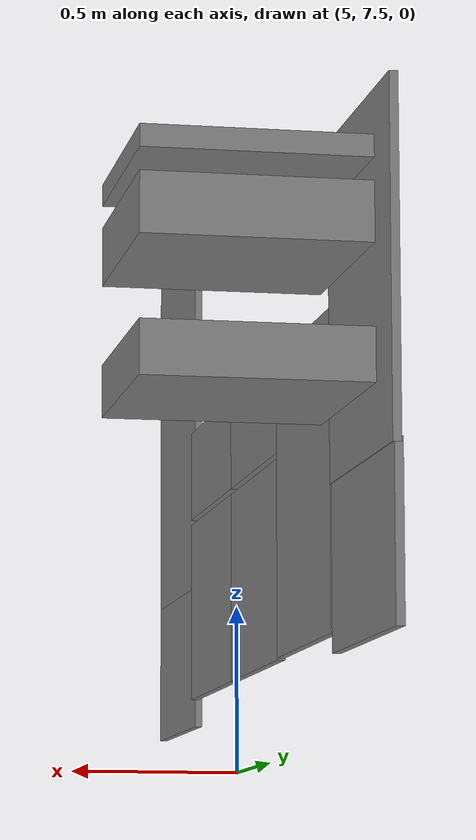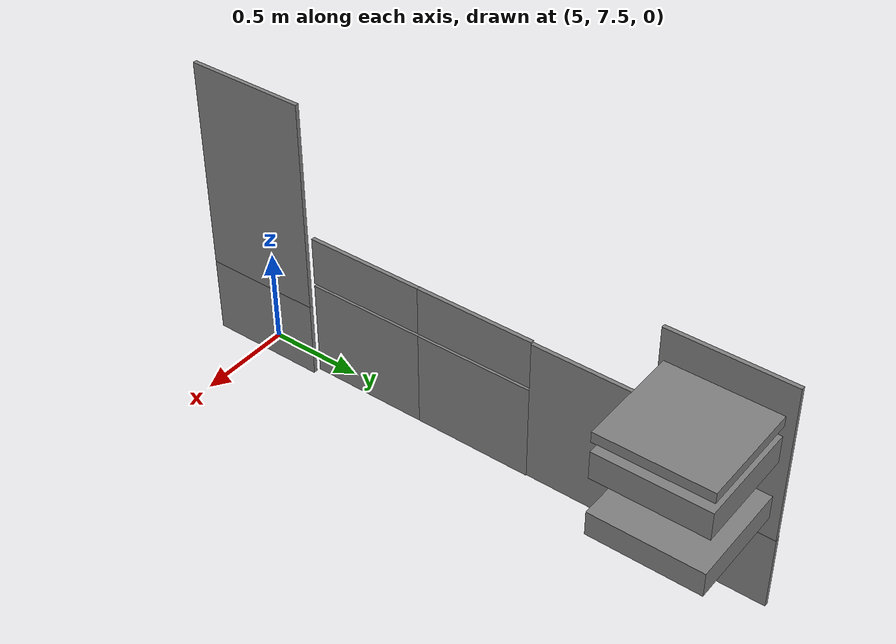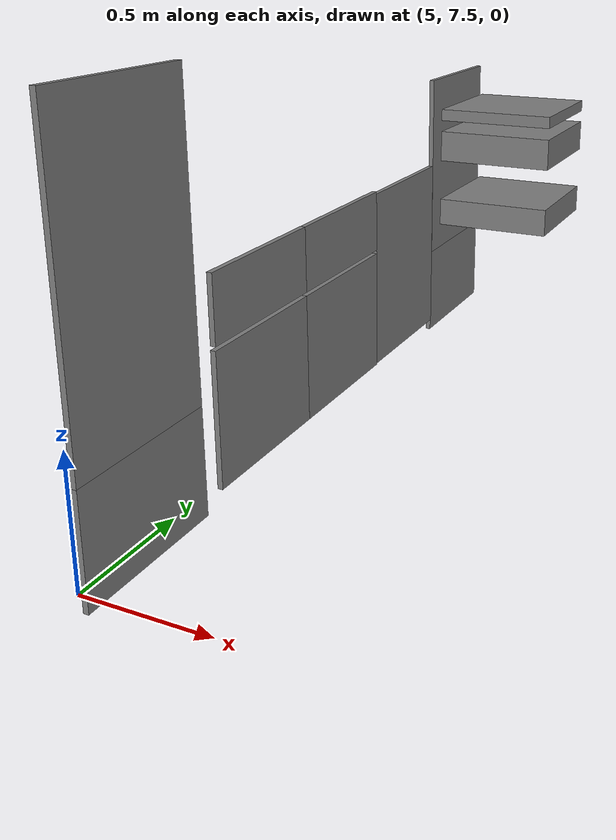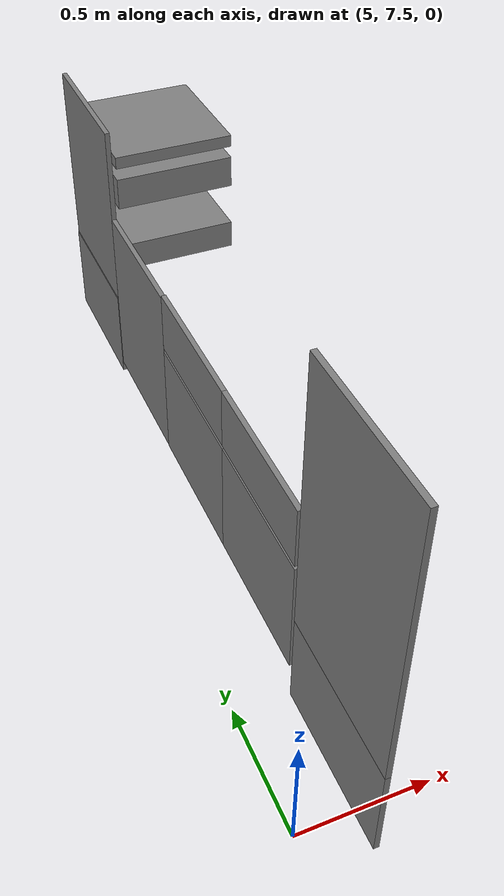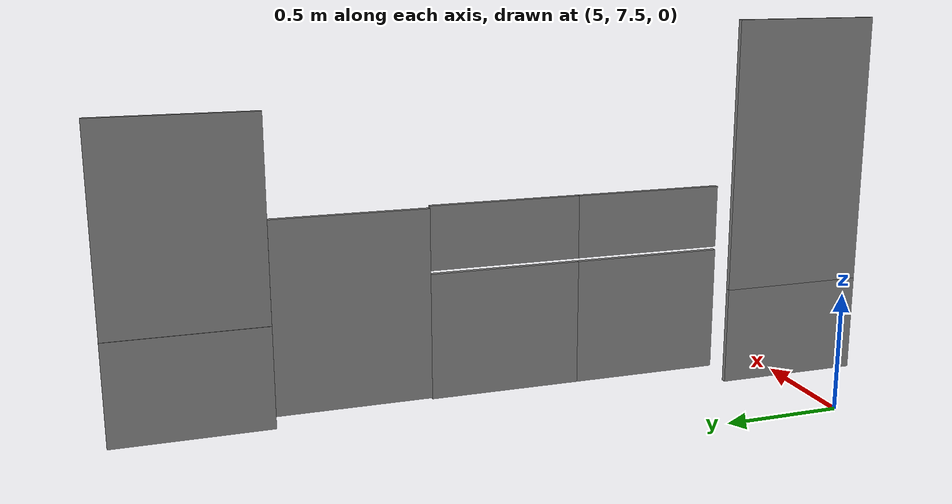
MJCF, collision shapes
<mujoco model="R007">
  <compiler angle="radian"/>

  <asset>
    <mesh name="mobile-fridge__Fridge_handle" content_type="model/obj" file="mobile-fridge__Fridge_handle.obj"/>
    <mesh name="mobile-fridge__Fridge_door" content_type="model/obj" file="mobile-fridge__Fridge_door.obj"/>
    <mesh name="mobile-fridge__Cover_back" content_type="model/obj" file="mobile-fridge__Cover_back.obj"/>
    <mesh name="mobile-fridge__Cover_right" content_type="model/obj" file="mobile-fridge__Cover_right.obj"/>
    <mesh name="mobile-fridge__Cover_left" content_type="model/obj" file="mobile-fridge__Cover_left.obj"/>
    <mesh name="mobile-fridge__Cover_front" content_type="model/obj" file="mobile-fridge__Cover_front.obj"/>
    <mesh name="mobile-fridge__Cabinet_back" content_type="model/obj" file="mobile-fridge__Cabinet_back.obj"/>
    <mesh name="mobile-fridge__Cabinet_right" content_type="model/obj" file="mobile-fridge__Cabinet_right.obj"/>
    <mesh name="mobile-fridge__Cabinet_left" content_type="model/obj" file="mobile-fridge__Cabinet_left.obj"/>
    <mesh name="mobile-fridge__Cabinet_top" content_type="model/obj" file="mobile-fridge__Cabinet_top.obj"/>
    <mesh name="mobile-fridge__Cabinet_bottom" content_type="model/obj" file="mobile-fridge__Cabinet_bottom.obj"/>
    <mesh name="mobile-fridge__Cabinet_inner" content_type="model/obj" file="mobile-fridge__Cabinet_inner.obj"/>
    <mesh name="mobile-fridge__SwingDoor_door" content_type="model/obj" file="mobile-fridge__SwingDoor_door.obj"/>
    <mesh name="mobile-fridge__SwingDoor_handle" content_type="model/obj" file="mobile-fridge__SwingDoor_handle.obj"/>
    <mesh name="mobile-dishwasher__Cover_back" content_type="model/obj" file="mobile-dishwasher__Cover_back.obj"/>
    <mesh name="mobile-dishwasher__Cover_left" content_type="model/obj" file="mobile-dishwasher__Cover_left.obj"/>
    <mesh name="mobile-dishwasher__Cover_right" content_type="model/obj" file="mobile-dishwasher__Cover_right.obj"/>
    <mesh name="mobile-dishwasher__Cover_front" content_type="model/obj" file="mobile-dishwasher__Cover_front.obj"/>
    <mesh name="mobile-dishwasher__Cabinet_back" content_type="model/obj" file="mobile-dishwasher__Cabinet_back.obj"/>
    <mesh name="mobile-dishwasher__Cabinet_bottom" content_type="model/obj" file="mobile-dishwasher__Cabinet_bottom.obj"/>
    <mesh name="mobile-dishwasher__Cabinet_left" content_type="model/obj" file="mobile-dishwasher__Cabinet_left.obj"/>
    <mesh name="mobile-dishwasher__Cabinet_right" content_type="model/obj" file="mobile-dishwasher__Cabinet_right.obj"/>
    <mesh name="mobile-dishwasher__Cabinet_top" content_type="model/obj" file="mobile-dishwasher__Cabinet_top.obj"/>
    <mesh name="mobile-dishwasher__Cabinet_interior" content_type="model/obj" file="mobile-dishwasher__Cabinet_interior.obj"/>
    <mesh name="mobile-dishwasher__Dishwasher_door" content_type="model/obj" file="mobile-dishwasher__Dishwasher_door.obj"/>
    <mesh name="mobile-dishwasher__Dishwasher_handle" content_type="model/obj" file="mobile-dishwasher__Dishwasher_handle.obj"/>
    <mesh name="mobile-dishwasher__Dishwasher_cutlery_basket_Basket" content_type="model/obj" file="mobile-dishwasher__Dishwasher_cutlery_basket_Basket.obj"/>
    <mesh name="mobile-dishwasher__Dishwasher_cutlery_basket_handle" content_type="model/obj" file="mobile-dishwasher__Dishwasher_cutlery_basket_handle.obj"/>
    <mesh name="mobile-dishwasher__Dishwasher_upper_basket_Basket" content_type="model/obj" file="mobile-dishwasher__Dishwasher_upper_basket_Basket.obj"/>
    <mesh name="mobile-dishwasher__Dishwasher_upper_basket_handle" content_type="model/obj" file="mobile-dishwasher__Dishwasher_upper_basket_handle.obj"/>
    <mesh name="mobile-dishwasher__Dishwasher_upper_basket_divider" content_type="model/obj" file="mobile-dishwasher__Dishwasher_upper_basket_divider.obj"/>
    <mesh name="mobile-dishwasher__Dishwasher_lower_basket_Basket" content_type="model/obj" file="mobile-dishwasher__Dishwasher_lower_basket_Basket.obj"/>
    <mesh name="mobile-dishwasher__Dishwasher_lower_basket_handle" content_type="model/obj" file="mobile-dishwasher__Dishwasher_lower_basket_handle.obj"/>
    <mesh name="mobile-dishwasher__Dishwasher_lower_basket_structure" content_type="model/obj" file="mobile-dishwasher__Dishwasher_lower_basket_structure.obj"/>
    <mesh name="mobile-dishwasher__Drawer_interior" content_type="model/obj" file="mobile-dishwasher__Drawer_interior.obj"/>
    <mesh name="mobile-dishwasher__Drawer_door" content_type="model/obj" file="mobile-dishwasher__Drawer_door.obj"/>
    <mesh name="mobile-dishwasher__Drawer_handle" content_type="model/obj" file="mobile-dishwasher__Drawer_handle.obj"/>
    <mesh name="mobile-kitchen-counter__Cabinet_back" content_type="model/obj" file="mobile-kitchen-counter__Cabinet_back.obj"/>
    <mesh name="mobile-kitchen-counter__Cabinet_cover" content_type="model/obj" file="mobile-kitchen-counter__Cabinet_cover.obj"/>
    <mesh name="mobile-kitchen-counter__Cabinet_inner_left_r" content_type="model/obj" file="mobile-kitchen-counter__Cabinet_inner_left_r.obj"/>
    <mesh name="mobile-kitchen-counter__Cabinet_inner_right_l" content_type="model/obj" file="mobile-kitchen-counter__Cabinet_inner_right_l.obj"/>
    <mesh name="mobile-kitchen-counter__Cabinet_inner_right_r" content_type="model/obj" file="mobile-kitchen-counter__Cabinet_inner_right_r.obj"/>
    <mesh name="mobile-kitchen-counter__Cabinet_right" content_type="model/obj" file="mobile-kitchen-counter__Cabinet_right.obj"/>
    <mesh name="mobile-kitchen-counter__Cabinet_left" content_type="model/obj" file="mobile-kitchen-counter__Cabinet_left.obj"/>
    <mesh name="mobile-kitchen-counter__Cabinet_inner_left_l" content_type="model/obj" file="mobile-kitchen-counter__Cabinet_inner_left_l.obj"/>
    <mesh name="mobile-kitchen-counter__Cabinet_bottom" content_type="model/obj" file="mobile-kitchen-counter__Cabinet_bottom.obj"/>
    <mesh name="mobile-kitchen-counter__Cover_back" content_type="model/obj" file="mobile-kitchen-counter__Cover_back.obj"/>
    <mesh name="mobile-kitchen-counter__Cover_right" content_type="model/obj" file="mobile-kitchen-counter__Cover_right.obj"/>
    <mesh name="mobile-kitchen-counter__Cover_left" content_type="model/obj" file="mobile-kitchen-counter__Cover_left.obj"/>
    <mesh name="mobile-kitchen-counter__Cover_front" content_type="model/obj" file="mobile-kitchen-counter__Cover_front.obj"/>
    <mesh name="mobile-kitchen-counter__Counter_top" content_type="model/obj" file="mobile-kitchen-counter__Counter_top.obj"/>
    <mesh name="mobile-kitchen-counter__Sink_water_outlet" content_type="model/obj" file="mobile-kitchen-counter__Sink_water_outlet.obj"/>
    <mesh name="mobile-kitchen-counter__Sink_water_tab" content_type="model/obj" file="mobile-kitchen-counter__Sink_water_tab.obj"/>
    <mesh name="mobile-kitchen-counter__Sink_sink" content_type="model/obj" file="mobile-kitchen-counter__Sink_sink.obj"/>
    <mesh name="mobile-kitchen-counter__SwingDoorRight_door" content_type="model/obj" file="mobile-kitchen-counter__SwingDoorRight_door.obj"/>
    <mesh name="mobile-kitchen-counter__SwingDoorRight_handle" content_type="model/obj" file="mobile-kitchen-counter__SwingDoorRight_handle.obj"/>
    <mesh name="mobile-kitchen-counter__SwingDoorMiddle_door" content_type="model/obj" file="mobile-kitchen-counter__SwingDoorMiddle_door.obj"/>
    <mesh name="mobile-kitchen-counter__SwingDoorMiddle_handle" content_type="model/obj" file="mobile-kitchen-counter__SwingDoorMiddle_handle.obj"/>
    <mesh name="mobile-kitchen-counter__DrawerRight_door" content_type="model/obj" file="mobile-kitchen-counter__DrawerRight_door.obj"/>
    <mesh name="mobile-kitchen-counter__DrawerRight_handle" content_type="model/obj" file="mobile-kitchen-counter__DrawerRight_handle.obj"/>
    <mesh name="mobile-kitchen-counter__DrawerRight_interior" content_type="model/obj" file="mobile-kitchen-counter__DrawerRight_interior.obj"/>
    <mesh name="mobile-kitchen-counter__DrawerMiddle_door" content_type="model/obj" file="mobile-kitchen-counter__DrawerMiddle_door.obj"/>
    <mesh name="mobile-kitchen-counter__DrawerMiddle_handle" content_type="model/obj" file="mobile-kitchen-counter__DrawerMiddle_handle.obj"/>
    <mesh name="mobile-kitchen-counter__DrawerMiddle_interior" content_type="model/obj" file="mobile-kitchen-counter__DrawerMiddle_interior.obj"/>
    <mesh name="mobile-kitchen-counter__SwingDoorLeft_door" content_type="model/obj" file="mobile-kitchen-counter__SwingDoorLeft_door.obj"/>
    <mesh name="mobile-kitchen-counter__SwingDoorLeft_handle" content_type="model/obj" file="mobile-kitchen-counter__SwingDoorLeft_handle.obj"/>
    <mesh name="controltable__controltable" content_type="model/obj" file="controltable__controltable.obj"/>
    <mesh name="table__table" content_type="model/obj" file="table__table.obj"/>
    <mesh name="hund-square-table-80x80__hund-square-table-80x80" content_type="model/obj" file="hund-square-table-80x80__hund-square-table-80x80.obj"/>
  </asset>

  <worldbody>
    <geom pos="5.48 7.62 -0.03" quat="0 0 0 1" type="mesh" contype="0" conaffinity="0" group="1" density="0" mesh="mobile-fridge__Cover_back"/>
    <geom pos="5.48 7.62 -0.03" quat="0 0 0 1" type="mesh" contype="0" conaffinity="0" group="1" density="0" mesh="mobile-fridge__Cover_right"/>
    <geom pos="5.48 7.62 -0.03" quat="0 0 0 1" type="mesh" contype="0" conaffinity="0" group="1" density="0" mesh="mobile-fridge__Cover_left"/>
    <geom pos="5.48 7.62 -0.03" quat="0 0 0 1" type="mesh" contype="0" conaffinity="0" group="1" density="0" mesh="mobile-fridge__Cover_front"/>
    <geom pos="5.48 7.62 -0.03" quat="0 0 0 1" type="mesh" contype="0" conaffinity="0" group="1" density="0" mesh="mobile-fridge__Cabinet_back"/>
    <geom pos="5.48 7.62 -0.03" quat="0 0 0 1" type="mesh" contype="0" conaffinity="0" group="1" density="0" mesh="mobile-fridge__Cabinet_right"/>
    <geom pos="5.48 7.62 -0.03" quat="0 0 0 1" type="mesh" contype="0" conaffinity="0" group="1" density="0" mesh="mobile-fridge__Cabinet_left"/>
    <geom pos="5.48 7.62 -0.03" quat="0 0 0 1" type="mesh" contype="0" conaffinity="0" group="1" density="0" mesh="mobile-fridge__Cabinet_top"/>
    <geom pos="5.48 7.62 -0.03" quat="0 0 0 1" type="mesh" contype="0" conaffinity="0" group="1" density="0" mesh="mobile-fridge__Cabinet_bottom"/>
    <geom pos="5.48 7.62 -0.03" quat="0 0 0 1" type="mesh" contype="0" conaffinity="0" group="1" density="0" mesh="mobile-fridge__Cabinet_inner"/>
    <geom name="mobile-dishwasher__None" pos="5.5 10.08 0" quat="0 0 0 1" type="mesh" contype="0" conaffinity="0" group="1" density="0" mesh="mobile-dishwasher__Cover_back"/>
    <geom pos="5.5 10.08 0" quat="0 0 0 1" type="mesh" contype="0" conaffinity="0" group="1" density="0" mesh="mobile-dishwasher__Cover_left"/>
    <geom pos="5.5 10.08 0" quat="0 0 0 1" type="mesh" contype="0" conaffinity="0" group="1" density="0" mesh="mobile-dishwasher__Cover_right"/>
    <geom pos="5.5 10.08 0" quat="0 0 0 1" type="mesh" contype="0" conaffinity="0" group="1" density="0" mesh="mobile-dishwasher__Cover_front"/>
    <geom pos="5.5 10.08 0" quat="0 0 0 1" type="mesh" contype="0" conaffinity="0" group="1" density="0" mesh="mobile-dishwasher__Cabinet_back"/>
    <geom pos="5.5 10.08 0" quat="0 0 0 1" type="mesh" contype="0" conaffinity="0" group="1" density="0" mesh="mobile-dishwasher__Cabinet_bottom"/>
    <geom pos="5.5 10.08 0" quat="0 0 0 1" type="mesh" contype="0" conaffinity="0" group="1" density="0" mesh="mobile-dishwasher__Cabinet_left"/>
    <geom pos="5.5 10.08 0" quat="0 0 0 1" type="mesh" contype="0" conaffinity="0" group="1" density="0" mesh="mobile-dishwasher__Cabinet_right"/>
    <geom pos="5.5 10.08 0" quat="0 0 0 1" type="mesh" contype="0" conaffinity="0" group="1" density="0" mesh="mobile-dishwasher__Cabinet_top"/>
    <geom pos="5.5 10.08 0" quat="0 0 0 1" type="mesh" contype="0" conaffinity="0" group="1" density="0" mesh="mobile-dishwasher__Cabinet_interior"/>
    <geom name="mobile-kitchen-counter__None" pos="5.8 7.98 0.02" quat="0 0 0 1" type="mesh" contype="0" conaffinity="0" group="1" density="0" mesh="mobile-kitchen-counter__Cabinet_back"/>
    <geom pos="5.8 7.98 0.02" quat="0 0 0 1" type="mesh" contype="0" conaffinity="0" group="1" density="0" mesh="mobile-kitchen-counter__Cabinet_cover"/>
    <geom pos="5.8 7.98 0.02" quat="0 0 0 1" type="mesh" contype="0" conaffinity="0" group="1" density="0" mesh="mobile-kitchen-counter__Cabinet_inner_left_r"/>
    <geom pos="5.8 7.98 0.02" quat="0 0 0 1" type="mesh" contype="0" conaffinity="0" group="1" density="0" mesh="mobile-kitchen-counter__Cabinet_inner_right_l"/>
    <geom pos="5.8 7.98 0.02" quat="0 0 0 1" type="mesh" contype="0" conaffinity="0" group="1" density="0" mesh="mobile-kitchen-counter__Cabinet_inner_right_r"/>
    <geom pos="5.8 7.98 0.02" quat="0 0 0 1" type="mesh" contype="0" conaffinity="0" group="1" density="0" mesh="mobile-kitchen-counter__Cabinet_right"/>
    <geom pos="5.8 7.98 0.02" quat="0 0 0 1" type="mesh" contype="0" conaffinity="0" group="1" density="0" mesh="mobile-kitchen-counter__Cabinet_left"/>
    <geom pos="5.8 7.98 0.02" quat="0 0 0 1" type="mesh" contype="0" conaffinity="0" group="1" density="0" mesh="mobile-kitchen-counter__Cabinet_inner_left_l"/>
    <geom pos="5.8 7.98 0.02" quat="0 0 0 1" type="mesh" contype="0" conaffinity="0" group="1" density="0" mesh="mobile-kitchen-counter__Cabinet_bottom"/>
    <geom pos="5.8 7.98 0.02" quat="0 0 0 1" type="mesh" contype="0" conaffinity="0" group="1" density="0" mesh="mobile-kitchen-counter__Cover_back"/>
    <geom pos="5.8 7.98 0.02" quat="0 0 0 1" type="mesh" contype="0" conaffinity="0" group="1" density="0" mesh="mobile-kitchen-counter__Cover_right"/>
    <geom pos="5.8 7.98 0.02" quat="0 0 0 1" type="mesh" contype="0" conaffinity="0" group="1" density="0" mesh="mobile-kitchen-counter__Cover_left"/>
    <geom pos="5.8 7.98 0.02" quat="0 0 0 1" type="mesh" contype="0" conaffinity="0" group="1" density="0" mesh="mobile-kitchen-counter__Cover_front"/>
    <geom pos="5.8 7.98 0.02" quat="0 0 0 1" type="mesh" contype="0" conaffinity="0" group="1" density="0" mesh="mobile-kitchen-counter__Counter_top"/>
    <geom pos="5.8 7.98 0.02" quat="0 0 0 1" type="mesh" contype="0" conaffinity="0" group="1" density="0" mesh="mobile-kitchen-counter__Sink_water_outlet"/>
    <geom pos="5.8 7.98 0.02" quat="0 0 0 1" type="mesh" contype="0" conaffinity="0" group="1" density="0" mesh="mobile-kitchen-counter__Sink_water_tab"/>
    <geom pos="5.8 7.98 0.02" quat="0 0 0 1" type="mesh" contype="0" conaffinity="0" group="1" density="0" mesh="mobile-kitchen-counter__Sink_sink"/>
    <geom pos="1.4 8.25 0" quat="1 0 0 0" type="mesh" contype="0" conaffinity="0" group="1" density="0" mesh="controltable__controltable"/>
    <geom pos="5.25 11.9 -0.07" quat="0 0 0 1" type="mesh" contype="0" conaffinity="0" group="1" density="0" mesh="table__table"/>
    <geom pos="1.2 10.89 -0.05" quat="0.707107 0.707107 0 0" type="mesh" contype="0" conaffinity="0" group="1" density="0" mesh="hund-square-table-80x80__hund-square-table-80x80"/>
    <geom pos="1.2 12.38 -0.05" quat="0.707107 0.707107 0 0" type="mesh" contype="0" conaffinity="0" group="1" density="0" mesh="hund-square-table-80x80__hund-square-table-80x80"/>
    <body name="mobile-fridge__Fridge" pos="5.20806 7.33367 1.15972" quat="0 0 0 1">
      <inertial pos="0.025026 -0.308998 0.0107926" quat="0.749226 0.66043 0.04909 0.0090687" mass="6" diaginertia="6.35104 6.33581 6.01553"/>
      <joint name="mobile-fridge__Fridge_joint" pos="0 0 0" axis="0 0 1" range="0 1.7"/>
      <geom name="mobile-fridge__None" pos="-0.271943 -0.286331 -1.18972" quat="1 0 0 0" type="mesh" contype="0" conaffinity="0" group="1" density="0" mesh="mobile-fridge__Fridge_handle"/>
      <geom pos="-0.271943 -0.286331 -1.18972" type="mesh" contype="0" conaffinity="0" group="1" density="0" mesh="mobile-fridge__Fridge_door"/>
      <geom size="0.01 0.3 0.55" pos="0.016072 -0.286123 -0.105686" type="box"/>
    </body>
    <body name="mobile-fridge__SwingDoor" pos="5.20806 7.33367 0.279863" quat="0 0 0 1">
      <inertial pos="0.025023 -0.190748 0.0838644" quat="0.846809 0.520837 0.0999237 -0.0407224" mass="6" diaginertia="6.14612 6.13492 6.01149"/>
      <joint name="mobile-fridge__SwingDoor_joint" pos="0 0 0" axis="0 0 1" range="0 1.7"/>
      <geom pos="-0.271943 -0.286331 -0.309863" quat="1 0 0 0" type="mesh" contype="0" conaffinity="0" group="1" density="0" mesh="mobile-fridge__SwingDoor_door"/>
      <geom size="0.01 0.3 0.2" pos="0.016053 -0.286123 0.0256714" type="box"/>
      <geom pos="-0.271943 -0.286331 -0.309863" quat="1 0 0 0" type="mesh" contype="0" conaffinity="0" group="1" density="0" mesh="mobile-fridge__SwingDoor_handle"/>
    </body>
    <body name="mobile-dishwasher__Dishwasher" pos="5.23358 10.08 0.564574" quat="0 0 0 1">
      <inertial pos="0.0185936 0.00135705 0.511125" quat="0.999886 -0.00153449 0.015019 -6.6602e-06" mass="9" diaginertia="9.82624 9.78354 9.0473"/>
      <joint name="mobile-dishwasher__Dishwasher_joint" pos="0 0 0" axis="0 1 0" range="0 1.7"/>
      <geom pos="-0.266425 0 -0.564574" type="mesh" contype="0" conaffinity="0" group="1" density="0" mesh="mobile-dishwasher__Dishwasher_door"/>
      <geom size="0.01 0.3 0.4" pos="0.0190585 -3.09944e-06 0.357161" type="box"/>
      <geom pos="-0.266425 0 -0.564574" quat="1 0 0 0" type="mesh" contype="0" conaffinity="0" group="1" density="0" mesh="mobile-dishwasher__Dishwasher_handle"/>
    </body>
    <body name="mobile-dishwasher__Dishwasher_cutlery_basket" pos="5.50274 10.0813 1.16425" quat="0 0 0 1">
      <inertial pos="0.126522 -2.15368e-09 -0.00424004" quat="0.491555 0.508304 0.508304 0.491555" mass="4" diaginertia="4.0641 4.0641 4"/>
      <joint name="mobile-dishwasher__Dishwasher_cutlery_basket_joint" pos="0 0 0" axis="1 0 0" type="slide" range="0 0.5"/>
      <geom pos="0.0027399 0.00127814 -1.16425" quat="1 0 0 0" type="mesh" contype="0" conaffinity="0" group="1" density="0" mesh="mobile-dishwasher__Dishwasher_cutlery_basket_Basket"/>
      <geom size="0.025 0.2525 0.265" quat="0.5 0.5 0.5 -0.5" type="box"/>
      <geom pos="0.0027399 0.00127814 -1.16425" quat="1 0 0 0" type="mesh" contype="0" conaffinity="0" group="1" density="0" mesh="mobile-dishwasher__Dishwasher_cutlery_basket_handle"/>
    </body>
    <body name="mobile-dishwasher__Dishwasher_upper_basket" pos="5.50274 10.0813 1.02108" quat="0 0 0 1">
      <inertial pos="0.116522 -0.0108493 -0.00344066" quat="-0.143344 0.692425 -0.0726783 0.703362" mass="6" diaginertia="6.08535 6.08227 6.00308"/>
      <joint name="mobile-dishwasher__Dishwasher_upper_basket_joint" pos="0 0 0" axis="1 0 0" type="slide" range="0 0.5"/>
      <geom pos="0.00274001 0.00127813 -1.02108" quat="1 0 0 0" type="mesh" contype="0" conaffinity="0" group="1" density="0" mesh="mobile-dishwasher__Dishwasher_upper_basket_Basket"/>
      <geom size="0.0675 0.2525 0.265" quat="0.5 0.5 0.5 -0.5" type="box"/>
      <geom pos="-0.821665 -0.00127813 -0.250305" quat="0 0.707107 0 0.707107" type="mesh" contype="0" conaffinity="0" group="1" density="0" mesh="mobile-dishwasher__Dishwasher_upper_basket_handle"/>
      <geom pos="0.00274001 0.00127813 -1.02108" quat="1 0 0 0" type="mesh" contype="0" conaffinity="0" group="1" density="0" mesh="mobile-dishwasher__Dishwasher_upper_basket_divider"/>
    </body>
    <body name="mobile-dishwasher__Dishwasher_lower_basket" pos="5.50274 10.0813 0.71187" quat="0 0 0 1">
      <inertial pos="0.166119 -0.000261887 0.10997" quat="0.638772 0.325417 0.340895 0.608165" mass="6" diaginertia="6.12024 6.11943 6.00081"/>
      <joint name="mobile-dishwasher__Dishwasher_lower_basket_joint" pos="0 0 0" axis="1 0 0" type="slide" range="0 0.5"/>
      <geom pos="0.00274026 0.00127813 -0.71187" quat="1 0 0 0" type="mesh" contype="0" conaffinity="0" group="1" density="0" mesh="mobile-dishwasher__Dishwasher_lower_basket_Basket"/>
      <geom size="0.06 0.2525 0.265" quat="0.5 0.5 0.5 -0.5" type="box"/>
      <geom pos="0.00274026 0.00127813 -0.71187" quat="1 0 0 0" type="mesh" contype="0" conaffinity="0" group="1" density="0" mesh="mobile-dishwasher__Dishwasher_lower_basket_handle"/>
      <geom pos="0.00274026 0.00127813 -0.71187" quat="1 0 0 0" type="mesh" contype="0" conaffinity="0" group="1" density="0" mesh="mobile-dishwasher__Dishwasher_lower_basket_structure"/>
    </body>
    <body name="mobile-dishwasher__Drawer" pos="5.21152 10.08 0.334433" quat="0 0 0 1">
      <inertial pos="-0.0278238 8.32093e-05 0.0600862" quat="0.626817 0.328924 0.328433 0.625333" mass="6" diaginertia="6.08308 6.07019 6.01289"/>
      <joint name="mobile-dishwasher__Drawer_joint" pos="0 0 0" axis="1 0 0" type="slide" range="0 0.4"/>
      <geom pos="-0.288483 2.86102e-06 -0.334433" quat="1 0 0 0" type="mesh" contype="0" conaffinity="0" group="1" density="0" mesh="mobile-dishwasher__Drawer_interior"/>
      <geom pos="-0.288483 2.86102e-06 -0.334433" quat="1 0 0 0" type="mesh" contype="0" conaffinity="0" group="1" density="0" mesh="mobile-dishwasher__Drawer_door"/>
      <geom size="0.01 0.3 0.2" type="box"/>
      <geom pos="-0.288483 2.86102e-06 -0.334433" quat="1 0 0 0" type="mesh" contype="0" conaffinity="0" group="1" density="0" mesh="mobile-dishwasher__Drawer_handle"/>
    </body>
    <body name="mobile-kitchen-counter__SwingDoorRight" pos="5.23291 7.99976 0.426722" quat="0 0 0 1">
      <inertial pos="0.0263107 -0.305486 0.0591297" quat="0.783854 0.618066 0.059548 -0.00473803" mass="6" diaginertia="6.34587 6.34274 6.00342"/>
      <joint name="mobile-kitchen-counter__SwingDoorRight_joint" pos="0 0 0" axis="0 0 1" range="0 1.7"/>
      <geom pos="-0.567087 0.0197562 -0.406722" quat="1 0 0 0" type="mesh" contype="0" conaffinity="0" group="1" density="0" mesh="mobile-kitchen-counter__SwingDoorRight_door"/>
      <geom size="0.01 0.3 0.25" pos="0.0189053 -0.280244 -0.000180364" type="box"/>
      <geom pos="-0.567087 0.0197562 -0.406722" quat="1 0 0 0" type="mesh" contype="0" conaffinity="0" group="1" density="0" mesh="mobile-kitchen-counter__SwingDoorRight_handle"/>
    </body>
    <body name="mobile-kitchen-counter__SwingDoorMiddle" pos="5.23291 9.16071 0.426722" quat="0 0 0 1">
      <inertial pos="0.0263107 0.305642 0.0591296" quat="0.618104 0.783817 0.00483899 -0.0596183" mass="6" diaginertia="6.34604 6.34291 6.00343"/>
      <joint name="mobile-kitchen-counter__SwingDoorMiddle_joint" pos="0 0 0" axis="0 0 -1" range="0 1.7"/>
      <geom pos="-0.567087 1.18071 -0.406722" quat="1 0 0 0" type="mesh" contype="0" conaffinity="0" group="1" density="0" mesh="mobile-kitchen-counter__SwingDoorMiddle_door"/>
      <geom size="0.01 0.3 0.25" pos="0.0189055 0.280714 -0.000180721" type="box"/>
      <geom pos="-0.567087 1.18071 -0.406722" quat="1 0 0 0" type="mesh" contype="0" conaffinity="0" group="1" density="0" mesh="mobile-kitchen-counter__SwingDoorMiddle_handle"/>
    </body>
    <body name="mobile-kitchen-counter__DrawerRight" pos="5.21401 8.281 0.816042" quat="0 0 0 1">
      <inertial pos="-0.0258365 -0.000142906 0.0277551" quat="0.583666 0.400294 0.395563 0.585345" mass="7" diaginertia="7.10248 7.09895 7.00353"/>
      <joint name="mobile-kitchen-counter__DrawerRight_joint" pos="0 0 0" axis="1 0 0" type="slide" range="0 0.4"/>
      <geom pos="-0.585988 0.301 -0.796042" quat="1 0 0 0" type="mesh" contype="0" conaffinity="0" group="1" density="0" mesh="mobile-kitchen-counter__DrawerRight_door"/>
      <geom size="0.01 0.3 0.125" type="box"/>
      <geom pos="-0.585988 0.301 -0.796042" quat="1 0 0 0" type="mesh" contype="0" conaffinity="0" group="1" density="0" mesh="mobile-kitchen-counter__DrawerRight_handle"/>
      <geom pos="-0.585988 0.301 -0.796042" quat="1 0 0 0" type="mesh" contype="0" conaffinity="0" group="1" density="0" mesh="mobile-kitchen-counter__DrawerRight_interior"/>
    </body>
    <body name="mobile-kitchen-counter__DrawerMiddle" pos="5.21401 8.881 0.816041" quat="0 0 0 1">
      <inertial pos="-0.0355457 -8.33174e-05 0.0214643" quat="0.581224 0.403828 0.399089 0.58295" mass="6" diaginertia="6.09686 6.09356 6.0033"/>
      <joint name="mobile-kitchen-counter__DrawerMiddle_joint" pos="0 0 0" axis="1 0 0" type="slide" range="0 0.46"/>
      <geom pos="-0.585989 0.901 -0.796041" quat="1 0 0 0" type="mesh" contype="0" conaffinity="0" group="1" density="0" mesh="mobile-kitchen-counter__DrawerMiddle_door"/>
      <geom size="0.01 0.3 0.125" type="box"/>
      <geom pos="-0.585989 0.901 -0.796041" quat="1 0 0 0" type="mesh" contype="0" conaffinity="0" group="1" density="0" mesh="mobile-kitchen-counter__DrawerMiddle_handle"/>
      <geom pos="-0.585989 0.901 -0.796041" quat="1 0 0 0" type="mesh" contype="0" conaffinity="0" group="1" density="0" mesh="mobile-kitchen-counter__DrawerMiddle_interior"/>
    </body>
    <body name="mobile-kitchen-counter__SwingDoorLeft" pos="5.23291 9.75896 0.426722" quat="0 0 0 1">
      <inertial pos="0.0263103 0.304476 0.210296" quat="0.447629 0.893112 0.00657408 -0.0439958" mass="6" diaginertia="6.5015 6.49869 6.00311"/>
      <joint name="mobile-kitchen-counter__SwingDoorLeft_joint" pos="0 0 0" axis="0 0 -1" range="0 1.7"/>
      <geom pos="-0.567087 1.77896 -0.406722" type="mesh" contype="0" conaffinity="0" group="1" density="0" mesh="mobile-kitchen-counter__SwingDoorLeft_door"/>
      <geom size="0.01 0.3 0.375" pos="0.0189069 0.278965 0.129819" type="box"/>
      <geom pos="-0.567087 1.77896 -0.406722" quat="1 0 0 0" type="mesh" contype="0" conaffinity="0" group="1" density="0" mesh="mobile-kitchen-counter__SwingDoorLeft_handle"/>
    </body>
  </worldbody>
</mujoco>
